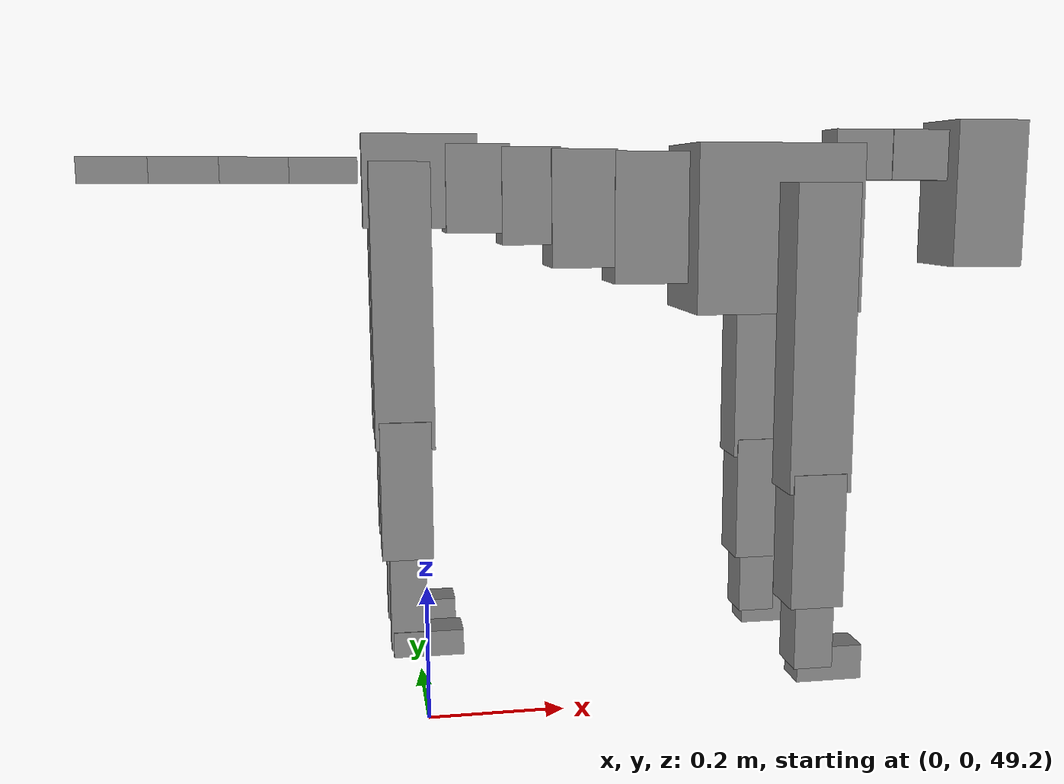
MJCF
<mujoco model="dog">

    <default>
        <joint armature="0.02" stiffness="1" damping="0.2" limited="true"/>
        <geom condim="3" friction="1 0.05 0.05" margin="0.01"/>
        <motor ctrllimited="true" ctrlrange="-1.0 1.0" forcelimited="true" gear="50"/>
    </default>

    <compiler inertiafromgeom="true" angle="radian"/>

    <option timestep="0.016" iterations="50" tolerance="1e-10" solver="Newton" jacobian="dense" cone="pyramidal"/>

    <size nconmax="20000" njmax="60000" nstack="5000000"/>
    <visual>
        <map force="0.1" zfar="30"/>
        <rgba haze="0.15 0.25 0.35 1"/>
        <quality shadowsize="2048"/>
        <global offwidth="800" offheight="800"/>
    </visual>

    <asset>
        <texture type="skybox" builtin="gradient" rgb1="0.3 0.5 0.7" rgb2="0 0 0" width="512" height="512"/>
        <texture name="texplane" type="2d" builtin="checker" rgb1=".2 .3 .4" rgb2=".1 0.15 0.2" width="512" height="512"
                 mark="cross" markrgb=".8 .8 .8"/>
        <texture name="texgeom" type="cube" builtin="flat" mark="cross" width="127" height="1278" rgb1="0.8 0.6 0.4"
                 rgb2="0.8 0.6 0.4" markrgb="1 1 1" random="0.01"/>

        <material name="matplane" reflectance="0.3" texture="texplane" texrepeat="1 1" texuniform="true"/>
        <material name="matgeom" texture="texgeom" texuniform="true" rgba="0.8 0.6 .4 1"/>
    </asset>

    <worldbody>
        <geom name="floor" pos="0 0 0" size="0 0 .25" type="plane" material="matplane" condim="3"/>

        <light directional="false" diffuse=".2 .2 .2" specular="0 0 0" pos="0 0 5" dir="0 0 -1" castshadow="false"/>
        <light mode="targetbodycom" target="torso" directional="false" diffuse=".8 .8 .8" specular="0.3 0.3 0.3"
               pos="0 0 4.0" dir="0 0 -1"/>

        <body name="root" pos="0 0 50">
            <freejoint name="root_1"/>
            <geom type="box" pos="0 0 -0.02" size="0.0774  0.0358  0.063" density="2030"/>

            <body name="spine1" pos="0.054 0 0">
                <joint name="spine1_y" axis="0 1 0" range="0 0.7" limited="true"/>
                <geom type="box" pos="0.02375 0 -0.03" size="0.04375  0.0375  0.05985" density="2030"/>

                <body name="spine2" pos="0.0612 0 0">
                    <joint name="spine2_y" axis="0 1 0" range="-0.15 0.15" limited="true"/>
                    <geom type="box" pos="0.03555  0  -0.04" size="0.04055  0.039  0.06615" density="2030"/>

                    <body name="spine3" pos="0.0730 0 0">
                        <joint name="spine3_y" axis="0 1 0" range="-0.15 0.15" limited="true"/>
                        <geom type="box" pos="0.03555  0  -0.057" size="0.04555  0.0445  0.081" density="2030"/>

                        <body name="spine4" pos="0.0780 0 0">
                            <joint name="spine4_y" axis="0 1 0" range="-0.15 0.15" limited="true"/>
                            <geom type="box" pos="0.05265  0  -0.07" size="0.05265  0.045  0.09135" density="2030"/>

                            <body name="torso" pos="0.1082 0 0">
                                <joint name="torso_y" axis="0 1 0" range="-0.15 0.15" limited="true"/>
                                <geom type="box" pos="0.11925  0  -0.085" size="0.11925  0.085  0.11745"
                                      density="2030"/>

                                <body name="neck1" pos="0.2160  0   0.0180">
                                    <joint name="neck1_y" axis="0 1 0" range="-1.2  -1" limited="true"/>
                                    <geom type="box" pos="0.0423  0  0" size="0.0423  0.03  0.036" density="2325"/>

                                    <body name="neck2" pos="0.0853  0  0">
                                        <joint name="neck2_y" axis="0 1 0" range="0.1  0" limited="true"/>
                                        <geom type="box" pos="0.0423  0  0" size="0.0423  0.03  0.036" density="2325"/>

                                        <body name="head" pos="0.0853  0  0">
                                            <joint name="head_y" axis="0 1 0" range="-0.3  -0.2" limited="true"/>
                                            <geom type="box" pos="0.0531  0  -0.055" size="0.0531  0.06  0.1044"
                                                  density="4030"/>

                                        </body>
                                    </body>
                                </body>

                                <body name="front_shoulder" pos="0.156  0   -0.0480">
                                    <joint name="front_shoulder_y" axis="0 1 0" range="-1 1.5" limited="true"/>
                                    <geom type="box" pos="0 0.13 -0.1840" size="0.0439  0.0375  0.2107" density="1158"/>
                                    <geom type="box" pos="0 -0.13 -0.1840" size="0.0439  0.0375  0.2107"
                                          density="1158"/>

                                    <body name="front_elbow" pos="0  0  -0.3681">
                                        <joint name="front_elbow_y" axis="0 1 0" range="-2 0" limited="true"/>
                                        <geom type="box" pos="0 0.13 -0.0951" size="0.0378  0.0386  0.0951"
                                              density="1081"/>
                                        <geom type="box" pos="0 -0.13 -0.0951" size="0.0378  0.0386  0.0951"
                                              density="1081"/>

                                        <body name="front_wrist" pos="0  0  -0.1901">
                                            <joint name="front_wrist_y" axis="0 1 0" range="-0.2 0" limited="true"/>
                                            <geom type="box" pos="0 0.13 -0.0387" size="0.0279  0.0310  0.0519"
                                                  density="1664"/>
                                            <geom type="box" pos="0 -0.13 -0.0387" size="0.0279  0.0310  0.0519"
                                                  density="1664"/>

                                            <body name="front_finger_end" pos="0  0  -0.0774">
                                                <joint name="front_finger_y" axis="0 1 0" range="-0.4 1"
                                                       limited="true"/>
                                                <geom type="box" pos="0.0259  0.13  -0.0099"
                                                      size="0.0474  0.0259  0.0249" density="1515"/>
                                                <geom type="box" pos="0.0259  -0.13  -0.0099"
                                                      size="0.0474  0.0259  0.0249" density="1515"/>

                                            </body>

                                        </body>
                                    </body>
                                </body>

                            </body>
                        </body>
                    </body>
                </body>
            </body>

            <body name="back_hip" pos="-0.03 0 -0.018">
                <joint name="back_hip_y" axis="0 1 0" range="-1.5 0.3" limited="true"/>
                <geom type="box" pos="0 0.07 -0.1676" size="0.0398  0.0312  0.1904" density="1154"/>
                <geom type="box" pos="0 -0.07 -0.1676" size="0.0398  0.0312  0.1904" density="1154"/>

                <body name="back_knee" pos="0  0  -0.3352">
                    <joint name="back_knee_y" axis="0 1 0" range="0 2.8" limited="true"/>
                    <geom type="box" pos="0 0.07 -0.0793" size="0.0345  0.0340  0.0949" density="1227"/>
                    <geom type="box" pos="0 -0.07 -0.0793" size="0.0345  0.0340  0.0949" density="1227"/>

                    <body name="back_ankle" pos="0  0  -0.1586">
                        <joint name="back_ankle_y" axis="0 1 0" range="-2.2 0" limited="true"/>
                        <geom type="box" pos="0 0.07 -0.0680" size="0.0245  0.0245  0.0792" density="1284"/>
                        <geom type="box" pos="0 -0.07 -0.0680" size="0.0245  0.0245  0.0792" density="1284"/>

                        <body name="back_toe_end" pos="0  0  -0.1359">
                            <joint name="back_toe_y" axis="0 1 0" range="-0.4 1" limited="true"/>
                            <geom type="box" pos="0.0261  0.07  -0.0028" size="0.0479  0.0261  0.0178" density="1515"/>
                            <geom type="box" pos="0.0261  -0.07  -0.0028" size="0.0479  0.0261  0.0178" density="1515"/>

                        </body>
                    </body>
                </body>
            </body>

            <body name="tail1" pos="-0.074 0 -0.006">
                <joint name="tail1_y" axis="0 1 0" range="-0.2 0.2" limited="true"/>
                <geom type="box" pos="-0.0536  0  0" size="0.045  0.025  0.0175" density="1587"/>

                <body name="tail2" pos="-0.09 0 0">
                    <joint name="tail2_y" axis="0 1 0" range="-0.2 0.2" limited="true"/>
                    <geom type="box" pos="-0.0536  0  0" size="0.045  0.025  0.0175" density="1587"/>

                    <body name="tail3" pos="-0.09 0 0">
                        <joint name="tail3_y" axis="0 1 0" range="-0.2 0.2" limited="true"/>
                        <geom type="box" pos="-0.0536  0  0" size="0.045  0.025  0.0175" density="1587"/>

                        <body name="tail4" pos="-0.09 0 0">
                            <joint name="tail4_y" axis="0 1 0" range="-0.2 0.2" limited="true"/>
                            <geom type="box" pos="-0.0536  0  0" size="0.045  0.025  0.0175" density="1587"/>

                        </body>
                    </body>
                </body>
            </body>
        </body>
    </worldbody>

    <actuator>
        <motor joint="spine1_y" forcerange="-150 150     "/>
        <motor joint="spine2_y" forcerange="-150 150     "/>
        <motor joint="spine3_y" forcerange="-150 150     "/>
        <motor joint="spine4_y" forcerange="-150 150     "/>
        <motor joint="torso_y" forcerange="-150 150     "/>
        <motor joint="neck1_y" forcerange="-100 100       "/>
        <motor joint="neck2_y" forcerange="-100 100       "/>
        <motor joint="head_y" forcerange="-150 150       "/>
        <motor joint="front_shoulder_y" forcerange="-187.68 162.49"/>
        <motor joint="front_elbow_y" forcerange="-190.21 190.48"/>
        <motor joint="front_wrist_y" forcerange="-117.57 130.10"/>
        <motor joint="front_finger_y" forcerange="-49.27 48.71"/>
        <motor joint="back_hip_y" forcerange="-321.11 295.46"/>
        <motor joint="back_knee_y" forcerange="-330.98 363.70"/>
        <motor joint="back_angle_y" forcerange="-50.87 240.82"/>
        <motor joint="back_toe_y" forcerange="-79.63 49.27"/>
        <motor joint="tail1_y" forcerange="-50 50     "/>
        <motor joint="tail2_y" forcerange="-50 50     "/>
        <motor joint="tail3_y" forcerange="-50 50     "/>
        <motor joint="tail4_y" forcerange="-50 50     "/>
    </actuator>
</mujoco>
